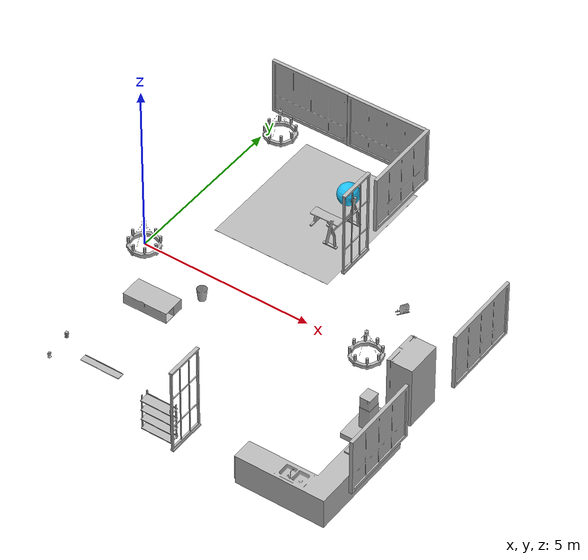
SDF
<sdf version="1.7">
 <world name="default">
  <model name="Ball_01_001">
   <static>1</static>
   <frame name="aws_robomaker_residential_Ball_01::__model__" attached_to="aws_robomaker_residential_Ball_01::link">
    <pose relative_to="__model__">0 0 0 0 -0 0</pose>
   </frame>
   <link name="aws_robomaker_residential_Ball_01::link">
    <inertial>
     <mass>0.12</mass>
     <inertia>
      <ixx>0.030752</ixx>
      <ixy>0</ixy>
      <ixz>0</ixz>
      <iyy>0.030752</iyy>
      <iyz>0</iyz>
      <izz>0.030752</izz>
     </inertia>
    </inertial>
    <collision name="collision">
     <geometry><sphere><radius>0.31</radius></sphere></geometry>
     <surface>
      <friction><ode><mu>0.85</mu><mu2>0.85</mu2></ode></friction>
      <contact><ode><kd>8500</kd><max_vel>5.1</max_vel></ode></contact>
     </surface>
    </collision>
    <visual name="visual">
     <geometry><sphere><radius>0.31</radius></sphere></geometry>
     <material><diffuse>0.12 0.76 0.97 1</diffuse><ambient>0.03 0.21 0.27 1</ambient></material>
     <meta><layer>1</layer></meta>
    </visual>
    <pose relative_to="aws_robomaker_residential_Ball_01::__model__">0 0 0 0 -0 0</pose>
   </link>
   <pose>3.2955 4.22567 0.318684 0 -0 0</pose>
  </model>
  <model name="Board_01_001">
   <static>1</static>
   <frame name="aws_robomaker_residential_Board_01::__model__" attached_to="aws_robomaker_residential_Board_01::link">
    <pose relative_to="__model__">0 0 0 0 -0 0</pose>
   </frame>
   <link name="aws_robomaker_residential_Board_01::link">
    <inertial><mass>1</mass></inertial>
    <collision name="collision">
     <geometry>
      <mesh>
       <uri>model://aws_robomaker_residential_Board_01/meshes/aws_Board_01_collision.DAE</uri>
       <scale>1 1 1</scale>
      </mesh>
     </geometry>
    </collision>
    <visual name="visual">
     <geometry>
      <mesh><uri>model://aws_robomaker_residential_Board_01/meshes/aws_Board_01_visual.DAE</uri></mesh>
     </geometry>
     <meta><layer>2</layer></meta>
    </visual>
    <pose relative_to="aws_robomaker_residential_Board_01::__model__">0 0 0 0 -0 0</pose>
   </link>
   <static>1</static>
   <pose>2.77907 -5.3927 1.53817 0 -0 0</pose>
  </model>
  <model name="Chandelier_01_001">
   <static>1</static>
   <frame name="aws_robomaker_residential_Chandelier_01::__model__" attached_to="aws_robomaker_residential_Chandelier_01::link">
    <pose relative_to="__model__">0 0 0 0 -0 0</pose>
   </frame>
   <link name="aws_robomaker_residential_Chandelier_01::link">
    <inertial><mass>1</mass></inertial>
    <collision name="collision">
     <geometry>
      <mesh>
       <uri>model://aws_robomaker_residential_Chandelier_01/meshes/aws_Chandelier_01_collision.DAE</uri>
       <scale>1 1 1</scale>
      </mesh>
     </geometry>
    </collision>
    <visual name="visual">
     <geometry>
      <mesh><uri>model://aws_robomaker_residential_Chandelier_01/meshes/aws_Chandelier_01_visual.DAE</uri></mesh>
     </geometry>
     <meta><layer>2</layer></meta>
    </visual>
    <pose relative_to="aws_robomaker_residential_Chandelier_01::__model__">0 0 0 0 -0 0</pose>
   </link>
   <static>1</static>
   <pose>1.22106 4.15574 1.295 0 -0 0</pose>
  </model>
  <model name="Chandelier_01_003">
   <static>1</static>
   <frame name="aws_robomaker_residential_Chandelier_01::__model__" attached_to="aws_robomaker_residential_Chandelier_01::link">
    <pose relative_to="__model__">0 0 0 0 -0 0</pose>
   </frame>
   <link name="aws_robomaker_residential_Chandelier_01::link">
    <inertial><mass>1</mass></inertial>
    <collision name="collision">
     <geometry>
      <mesh>
       <uri>model://aws_robomaker_residential_Chandelier_01/meshes/aws_Chandelier_01_collision.DAE</uri>
       <scale>1 1 1</scale>
      </mesh>
     </geometry>
    </collision>
    <visual name="visual">
     <geometry>
      <mesh><uri>model://aws_robomaker_residential_Chandelier_01/meshes/aws_Chandelier_01_visual.DAE</uri></mesh>
     </geometry>
     <meta><layer>2</layer></meta>
    </visual>
    <pose relative_to="aws_robomaker_residential_Chandelier_01::__model__">0 0 0 0 -0 0</pose>
   </link>
   <static>1</static>
   <pose>7.82406 -1.59 1.751 0 -0 0</pose>
  </model>
  <model name="Chandelier_01_004">
   <static>1</static>
   <frame name="aws_robomaker_residential_Chandelier_01::__model__" attached_to="aws_robomaker_residential_Chandelier_01::link">
    <pose relative_to="__model__">0 0 0 0 -0 0</pose>
   </frame>
   <link name="aws_robomaker_residential_Chandelier_01::link">
    <inertial><mass>1</mass></inertial>
    <collision name="collision">
     <geometry>
      <mesh>
       <uri>model://aws_robomaker_residential_Chandelier_01/meshes/aws_Chandelier_01_collision.DAE</uri>
       <scale>1 1 1</scale>
      </mesh>
     </geometry>
    </collision>
    <visual name="visual">
     <geometry>
      <mesh><uri>model://aws_robomaker_residential_Chandelier_01/meshes/aws_Chandelier_01_visual.DAE</uri></mesh>
     </geometry>
     <meta><layer>2</layer></meta>
    </visual>
    <pose relative_to="aws_robomaker_residential_Chandelier_01::__model__">0 0 0 0 -0 0</pose>
   </link>
   <static>1</static>
   <pose>1.22106 -1.59204 1.7873 0 -0 0</pose>
  </model>
  <model name="Carpet_01_002">
   <static>1</static>
   <frame name="aws_robomaker_residential_Carpet_01::__model__" attached_to="aws_robomaker_residential_Carpet_01::link">
    <pose relative_to="__model__">0 0 0 0 -0 0</pose>
   </frame>
   <link name="aws_robomaker_residential_Carpet_01::link">
    <inertial><mass>8.1</mass></inertial>
    <collision name="collision">
     <geometry>
      <mesh>
       <uri>model://aws_robomaker_residential_Carpet_01/meshes/aws_Carpet_01_collision.DAE</uri>
       <scale>1 1 0.95</scale>
      </mesh>
     </geometry>
     <surface><friction><ode><mu>100</mu><mu2>50</mu2></ode></friction></surface>
     <pose>0 0 -0.01 0 -0 0</pose>
    </collision>
    <visual name="visual">
     <geometry>
      <mesh><uri>model://aws_robomaker_residential_Carpet_01/meshes/aws_Carpet_01_visual.DAE</uri></mesh>
     </geometry>
     <meta><layer>1</layer></meta>
    </visual>
    <pose relative_to="aws_robomaker_residential_Carpet_01::__model__">0 0 0 0 -0 0</pose>
   </link>
   <static>1</static>
   <pose>2.85405 3.45 0.000585 0 -0 0</pose>
  </model>
  <model name="SecurityCamera_01_001">
   <static>1</static>
   <frame name="aws_robomaker_residential_SecurityCamera_01::__model__" attached_to="aws_robomaker_residential_SecurityCamera_01::link">
    <pose relative_to="__model__">0 0 0 0 -0 0</pose>
   </frame>
   <link name="aws_robomaker_residential_SecurityCamera_01::link">
    <inertial>
     <mass>1</mass>
     <inertia>
      <ixx>18.2222</ixx>
      <ixy>0</ixy>
      <ixz>0</ixz>
      <iyy>18.2222</iyy>
      <iyz>0</iyz>
      <izz>0.0018767</izz>
     </inertia>
    </inertial>
    <collision name="collision">
     <geometry>
      <mesh>
       <uri>model://aws_robomaker_residential_SecurityCamera_01/meshes/aws_SecurityCamera_01_collision.DAE</uri>
       <scale>1 1 1</scale>
      </mesh>
     </geometry>
    </collision>
    <visual name="visual">
     <geometry>
      <mesh>
       <uri>model://aws_robomaker_residential_SecurityCamera_01/meshes/aws_SecurityCamera_01_visual.DAE</uri>
      </mesh>
     </geometry>
     <meta><layer>2</layer></meta>
    </visual>
    <pose relative_to="aws_robomaker_residential_SecurityCamera_01::__model__">0 0 0 0 -0 0</pose>
   </link>
   <pose>0.842134 -4.99629 0.495067 0 0 -2.84104</pose>
  </model>
  <model name="CoffeeTable_01_001">
   <static>1</static>
   <frame name="aws_robomaker_residential_CoffeeTable_01::__model__" attached_to="aws_robomaker_residential_CoffeeTable_01::link">
    <pose relative_to="__model__">0 0 0 0 -0 0</pose>
   </frame>
   <link name="aws_robomaker_residential_CoffeeTable_01::link">
    <inertial>
     <mass>21.7</mass>
     <inertia><ixx>0.81375</ixx><ixy>0</ixy><ixz>0</ixz><iyy>2.76675</iyy><iyz>0</iyz><izz>3.254</izz></inertia>
    </inertial>
    <collision name="collision">
     <geometry>
      <mesh>
       <uri>model://aws_robomaker_residential_CoffeeTable_01/meshes/aws_CoffeeTable_01_collision.DAE</uri>
       <scale>1 1 1</scale>
      </mesh>
     </geometry>
     <surface><contact><ode><max_vel>0.01</max_vel></ode></contact></surface>
    </collision>
    <visual name="visual">
     <geometry>
      <mesh><uri>model://aws_robomaker_residential_CoffeeTable_01/meshes/aws_CoffeeTable_01_visual.DAE</uri></mesh>
     </geometry>
     <meta><layer>1</layer></meta>
    </visual>
    <pose relative_to="aws_robomaker_residential_CoffeeTable_01::__model__">0 0 0 0 -0 0</pose>
   </link>
   <static>1</static>
   <pose>1.5123 -1.73344 0.041983 0 -0 0.01</pose>
  </model>
  <model name="CookingBench_01_001">
   <frame name="aws_robomaker_residential_CookingBench_01::__model__" attached_to="aws_robomaker_residential_CookingBench_01::link">
    <pose relative_to="__model__">0 0 0 0 -0 0</pose>
   </frame>
   <link name="aws_robomaker_residential_CookingBench_01::link">
    <inertial><mass>1</mass></inertial>
    <collision name="collision">
     <geometry>
      <mesh>
       <uri>model://aws_robomaker_residential_CookingBench_01/meshes/aws_CookingBench_01_collision.DAE</uri>
       <scale>1 1 1</scale>
      </mesh>
     </geometry>
    </collision>
    <visual name="visual">
     <geometry>
      <mesh>
       <uri>model://aws_robomaker_residential_CookingBench_01/meshes/aws_CookingBench_01_visual.DAE</uri>
      </mesh>
     </geometry>
     <meta><layer>1</layer></meta>
    </visual>
    <pose relative_to="aws_robomaker_residential_CookingBench_01::__model__">0 0 0 0 -0 0</pose>
   </link>
   <pose>9.03838 -3.35114 0.90361 0 -0 3.13713</pose>
   <static>1</static>
  </model>
  <model name="FitnessEquipment_01_001">
   <static>1</static>
   <frame name="aws_robomaker_residential_FitnessEquipment_01::__model__" attached_to="aws_robomaker_residential_FitnessEquipment_01::link">
    <pose relative_to="__model__">0 0 0 0 -0 0</pose>
   </frame>
   <link name="aws_robomaker_residential_FitnessEquipment_01::link">
    <inertial><mass>80</mass></inertial>
    <collision name="collision">
     <geometry>
      <mesh>
       <uri>model://aws_robomaker_residential_FitnessEquipment_01/meshes/aws_FitnessEquipment_01_collision.DAE</uri>
       <scale>1 1 1</scale>
      </mesh>
     </geometry>
    </collision>
    <visual name="visual">
     <geometry>
      <mesh>
       <uri>model://aws_robomaker_residential_FitnessEquipment_01/meshes/aws_FitnessEquipment_01_visual.DAE</uri>
      </mesh>
     </geometry>
     <meta><layer>1</layer></meta>
    </visual>
    <pose relative_to="aws_robomaker_residential_FitnessEquipment_01::__model__">0 0 0 0 -0 0</pose>
   </link>
   <static>1</static>
   <pose>3.48472 3.1691 0.003168 0 -0 0</pose>
  </model>
  <model name="FoldingDoor_02_001">
   <static>1</static>
   <frame name="aws_robomaker_residential_FoldingDoor_02::__model__" attached_to="aws_robomaker_residential_FoldingDoor_02::link">
    <pose relative_to="__model__">0 0 0 0 -0 0</pose>
   </frame>
   <link name="aws_robomaker_residential_FoldingDoor_02::link">
    <inertial><mass>1</mass></inertial>
    <collision name="collision">
     <geometry>
      <mesh>
       <uri>model://aws_robomaker_residential_FoldingDoor_02/meshes/aws_FoldingDoor_02_collision.DAE</uri>
       <scale>1 1 1</scale>
      </mesh>
     </geometry>
    </collision>
    <visual name="visual">
     <geometry>
      <mesh><uri>model://aws_robomaker_residential_FoldingDoor_02/meshes/aws_FoldingDoor_02_visual.DAE</uri></mesh>
     </geometry>
     <meta><layer>2</layer></meta>
    </visual>
    <pose relative_to="aws_robomaker_residential_FoldingDoor_02::__model__">0 0 0 0 -0 0</pose>
   </link>
   <static>1</static>
   <pose>4.67423 2.46451 0 0 -0 3.14159</pose>
  </model>
  <model name="FoldingDoor_02_002">
   <static>1</static>
   <frame name="aws_robomaker_residential_FoldingDoor_02::__model__" attached_to="aws_robomaker_residential_FoldingDoor_02::link">
    <pose relative_to="__model__">0 0 0 0 -0 0</pose>
   </frame>
   <link name="aws_robomaker_residential_FoldingDoor_02::link">
    <inertial><mass>1</mass></inertial>
    <collision name="collision">
     <geometry>
      <mesh>
       <uri>model://aws_robomaker_residential_FoldingDoor_02/meshes/aws_FoldingDoor_02_collision.DAE</uri>
       <scale>1 1 1</scale>
      </mesh>
     </geometry>
    </collision>
    <visual name="visual">
     <geometry>
      <mesh><uri>model://aws_robomaker_residential_FoldingDoor_02/meshes/aws_FoldingDoor_02_visual.DAE</uri></mesh>
     </geometry>
     <meta><layer>2</layer></meta>
    </visual>
    <pose relative_to="aws_robomaker_residential_FoldingDoor_02::__model__">0 0 0 0 -0 0</pose>
   </link>
   <static>1</static>
   <pose>4.8912 -4.84968 0 0 -0 0</pose>
  </model>
  <model name="KitchenCabinet_01_001">
   <static>1</static>
   <frame name="aws_robomaker_residential_KitchenCabinet_01::__model__" attached_to="aws_robomaker_residential_KitchenCabinet_01::link">
    <pose relative_to="__model__">0 0 0 0 -0 0</pose>
   </frame>
   <link name="aws_robomaker_residential_KitchenCabinet_01::link">
    <inertial><mass>1</mass></inertial>
    <collision name="collision">
     <geometry>
      <mesh>
       <uri>model://aws_robomaker_residential_KitchenCabinet_01/meshes/aws_KitchenCabinet_01_collision.DAE</uri>
       <scale>1 1 1</scale>
      </mesh>
     </geometry>
    </collision>
    <visual name="visual">
     <geometry>
      <mesh>
       <uri>model://aws_robomaker_residential_KitchenCabinet_01/meshes/aws_KitchenCabinet_01_visual.DAE</uri>
      </mesh>
     </geometry>
     <meta><layer>1</layer></meta>
    </visual>
    <pose relative_to="aws_robomaker_residential_KitchenCabinet_01::__model__">0 0 0 0 -0 0</pose>
   </link>
   <static>1</static>
   <pose>8.00201 -3.83651 0.012068 0 0 -3.14</pose>
  </model>
  <model name="LightC_01_001">
   <static>1</static>
   <frame name="aws_robomaker_residential_LightC_01::__model__" attached_to="aws_robomaker_residential_LightC_01::link">
    <pose relative_to="__model__">0 0 0 0 -0 0</pose>
   </frame>
   <link name="aws_robomaker_residential_LightC_01::link">
    <inertial><mass>1</mass></inertial>
    <collision name="collision">
     <geometry>
      <mesh>
       <uri>model://aws_robomaker_residential_LightC_01/meshes/aws_LightC_01_collision.DAE</uri>
       <scale>1 1 1</scale>
      </mesh>
     </geometry>
    </collision>
    <visual name="visual">
     <geometry>
      <mesh><uri>model://aws_robomaker_residential_LightC_01/meshes/aws_LightC_01_visual.DAE</uri></mesh>
     </geometry>
     <meta><layer>2</layer></meta>
    </visual>
    <pose relative_to="aws_robomaker_residential_LightC_01::__model__">0 0 0 0 -0 0</pose>
   </link>
   <static>1</static>
   <pose>1.76957 -5.44437 2 0 -0 0</pose>
  </model>
  <model name="Rangehood_01_001">
   <static>1</static>
   <frame name="aws_robomaker_residential_Rangehood_01::__model__" attached_to="aws_robomaker_residential_Rangehood_01::link">
    <pose relative_to="__model__">0 0 0 0 -0 0</pose>
   </frame>
   <link name="aws_robomaker_residential_Rangehood_01::link">
    <inertial><mass>1</mass></inertial>
    <collision name="collision">
     <geometry>
      <mesh>
       <uri>model://aws_robomaker_residential_Rangehood_01/meshes/aws_Rangehood_01_collision.DAE</uri>
       <scale>1 1 1</scale>
      </mesh>
     </geometry>
    </collision>
    <visual name="visual">
     <geometry>
      <mesh><uri>model://aws_robomaker_residential_Rangehood_01/meshes/aws_Rangehood_01_visual.DAE</uri></mesh>
     </geometry>
     <meta><layer>2</layer></meta>
    </visual>
    <pose relative_to="aws_robomaker_residential_Rangehood_01::__model__">0 0 0 0 -0 0</pose>
   </link>
   <static>1</static>
   <pose>9.01979 -3.36994 1.50761 0 -0 0</pose>
  </model>
  <model name="Refrigerator_01_001">
   <static>1</static>
   <frame name="aws_robomaker_residential_Refrigerator_01::__model__" attached_to="aws_robomaker_residential_Refrigerator_01::link">
    <pose relative_to="__model__">0 0 0 0 -0 0</pose>
   </frame>
   <link name="aws_robomaker_residential_Refrigerator_01::link">
    <inertial><mass>1</mass></inertial>
    <collision name="collision">
     <geometry>
      <mesh>
       <uri>model://aws_robomaker_residential_Refrigerator_01/meshes/aws_Refrigerator_01_collision.DAE</uri>
       <scale>1 1 1</scale>
      </mesh>
     </geometry>
    </collision>
    <visual name="visual">
     <geometry>
      <mesh>
       <uri>model://aws_robomaker_residential_Refrigerator_01/meshes/aws_Refrigerator_01_visual.DAE</uri>
      </mesh>
     </geometry>
     <meta><layer>1</layer></meta>
    </visual>
    <pose relative_to="aws_robomaker_residential_Refrigerator_01::__model__">0 0 0 0 -0 0</pose>
   </link>
   <static>1</static>
   <pose>8.70273 -1.03203 0 0 0 -1.5635</pose>
  </model>
  <model name="ShoeRack_01_001">
   <static>1</static>
   <frame name="aws_robomaker_residential_ShoeRack_01::__model__" attached_to="aws_robomaker_residential_ShoeRack_01::link">
    <pose relative_to="__model__">0 0 0 0 -0 0</pose>
   </frame>
   <link name="aws_robomaker_residential_ShoeRack_01::link">
    <inertial>
     <mass>6</mass>
     <inertia>
      <ixx>0.02</ixx>
      <ixy>0</ixy>
      <ixz>0</ixz>
      <iyy>0.04</iyy>
      <iyz>0</iyz>
      <ixx>0.02</ixx>
      <izz>1</izz>
     </inertia>
    </inertial>
    <collision name="collision">
     <geometry>
      <mesh>
       <uri>model://aws_robomaker_residential_ShoeRack_01/meshes/aws_ShoeRack_01_collision.DAE</uri>
       <scale>1 1 1</scale>
      </mesh>
     </geometry>
     <surface>
      <friction><ode><mu>0.2</mu><mu2>0.2</mu2></ode></friction>
      <contact><ode><kd>2500</kd></ode></contact>
     </surface>
    </collision>
    <visual name="visual">
     <geometry>
      <mesh><uri>model://aws_robomaker_residential_ShoeRack_01/meshes/aws_ShoeRack_01_visual.DAE</uri></mesh>
     </geometry>
     <meta><layer>1</layer></meta>
    </visual>
    <pose relative_to="aws_robomaker_residential_ShoeRack_01::__model__">0 0 0 0 -0 0</pose>
   </link>
   <pose>4.29798 -5.17357 0 0 -0 0</pose>
  </model>
  <model name="Tableware_01_001">
   <static>1</static>
   <frame name="aws_robomaker_residential_Tableware_01::__model__" attached_to="aws_robomaker_residential_Tableware_01::link">
    <pose relative_to="__model__">0 0 0 0 -0 0</pose>
   </frame>
   <link name="aws_robomaker_residential_Tableware_01::link">
    <inertial><mass>1</mass></inertial>
    <collision name="collision">
     <geometry>
      <mesh>
       <uri>model://aws_robomaker_residential_Tableware_01/meshes/aws_Tableware_01_collision.DAE</uri>
       <scale>1 1 1</scale>
      </mesh>
     </geometry>
    </collision>
    <visual name="visual">
     <geometry>
      <mesh><uri>model://aws_robomaker_residential_Tableware_01/meshes/aws_Tableware_01_visual.DAE</uri></mesh>
     </geometry>
     <meta><layer>1</layer></meta>
    </visual>
    <pose relative_to="aws_robomaker_residential_Tableware_01::__model__">0 0 0 0 -0 0</pose>
   </link>
   <pose>7.15317 0.982767 0.817812 -0.001238 -0.000976 1.02476</pose>
  </model>
  <model name="Trash_01_001">
   <static>1</static>
   <frame name="aws_robomaker_residential_Trash_01::__model__" attached_to="aws_robomaker_residential_Trash_01::link">
    <pose relative_to="__model__">0 0 0 0 -0 0</pose>
   </frame>
   <link name="aws_robomaker_residential_Trash_01::link">
    <inertial>
     <mass>0.1</mass>
     <inertia><ixy>0</ixy><ixz>0</ixz><iyz>0</iyz><ixx>0.05288</ixx><iyy>0.05288</iyy><izz>0.09132</izz></inertia>
    </inertial>
    <collision name="collision">
     <geometry>
      <mesh>
       <uri>model://aws_robomaker_residential_Trash_01/meshes/aws_Trash_01_collision.DAE</uri>
       <scale>1 1 1</scale>
      </mesh>
     </geometry>
    </collision>
    <visual name="visual">
     <geometry>
      <mesh><uri>model://aws_robomaker_residential_Trash_01/meshes/aws_Trash_01_visual.DAE</uri></mesh>
     </geometry>
     <meta><layer>1</layer></meta>
    </visual>
    <pose relative_to="aws_robomaker_residential_Trash_01::__model__">0 0 0 0 -0 0</pose>
   </link>
   <pose>2.36015 -0.796238 0.011 0 -0 0</pose>
  </model>
  <model name="RoomWindow_01_003">
   <static>1</static>
   <frame name="aws_robomaker_residential_RoomWindow_01::__model__" attached_to="aws_robomaker_residential_RoomWindow_01::link">
    <pose relative_to="__model__">0 0 0 0 -0 0</pose>
   </frame>
   <link name="aws_robomaker_residential_RoomWindow_01::link">
    <inertial><mass>1</mass></inertial>
    <collision name="collision">
     <geometry>
      <mesh>
       <uri>model://aws_robomaker_residential_RoomWindow_01/meshes/aws_RoomWindow_01_collision.DAE</uri>
       <scale>1 1 1</scale>
      </mesh>
     </geometry>
    </collision>
    <visual name="visual">
     <geometry>
      <mesh><uri>model://aws_robomaker_residential_RoomWindow_01/meshes/aws_RoomWindow_01_visual.DAE</uri></mesh>
     </geometry>
     <meta><layer>2</layer></meta>
    </visual>
    <pose relative_to="aws_robomaker_residential_RoomWindow_01::__model__">0 0 0 0 -0 0</pose>
   </link>
   <static>1</static>
   <pose>9.42262 -3.37398 0.502739 0 0 -3.1361</pose>
  </model>
  <model name="RoomWindow_01_004">
   <static>1</static>
   <frame name="aws_robomaker_residential_RoomWindow_01::__model__" attached_to="aws_robomaker_residential_RoomWindow_01::link">
    <pose relative_to="__model__">0 0 0 0 -0 0</pose>
   </frame>
   <link name="aws_robomaker_residential_RoomWindow_01::link">
    <inertial><mass>1</mass></inertial>
    <collision name="collision">
     <geometry>
      <mesh>
       <uri>model://aws_robomaker_residential_RoomWindow_01/meshes/aws_RoomWindow_01_collision.DAE</uri>
       <scale>1 1 1</scale>
      </mesh>
     </geometry>
    </collision>
    <visual name="visual">
     <geometry>
      <mesh><uri>model://aws_robomaker_residential_RoomWindow_01/meshes/aws_RoomWindow_01_visual.DAE</uri></mesh>
     </geometry>
     <meta><layer>2</layer></meta>
    </visual>
    <pose relative_to="aws_robomaker_residential_RoomWindow_01::__model__">0 0 0 0 -0 0</pose>
   </link>
   <static>1</static>
   <pose>9.42256 0.96852 0.496581 0 0 -3.1361</pose>
  </model>
  <model name="RoomWindow_01_005">
   <static>1</static>
   <frame name="aws_robomaker_residential_RoomWindow_01::__model__" attached_to="aws_robomaker_residential_RoomWindow_01::link">
    <pose relative_to="__model__">0 0 0 0 -0 0</pose>
   </frame>
   <link name="aws_robomaker_residential_RoomWindow_01::link">
    <inertial><mass>1</mass></inertial>
    <collision name="collision">
     <geometry>
      <mesh>
       <uri>model://aws_robomaker_residential_RoomWindow_01/meshes/aws_RoomWindow_01_collision.DAE</uri>
       <scale>1 1 1</scale>
      </mesh>
     </geometry>
    </collision>
    <visual name="visual">
     <geometry>
      <mesh><uri>model://aws_robomaker_residential_RoomWindow_01/meshes/aws_RoomWindow_01_visual.DAE</uri></mesh>
     </geometry>
     <meta><layer>2</layer></meta>
    </visual>
    <pose relative_to="aws_robomaker_residential_RoomWindow_01::__model__">0 0 0 0 -0 0</pose>
   </link>
   <static>1</static>
   <pose>4.72232 4.47028 0.502739 0 0 -3.1361</pose>
  </model>
  <model name="RoomWindow_01_006">
   <static>1</static>
   <frame name="aws_robomaker_residential_RoomWindow_01::__model__" attached_to="aws_robomaker_residential_RoomWindow_01::link">
    <pose relative_to="__model__">0 0 0 0 -0 0</pose>
   </frame>
   <link name="aws_robomaker_residential_RoomWindow_01::link">
    <inertial><mass>1</mass></inertial>
    <collision name="collision">
     <geometry>
      <mesh>
       <uri>model://aws_robomaker_residential_RoomWindow_01/meshes/aws_RoomWindow_01_collision.DAE</uri>
       <scale>1 1 1</scale>
      </mesh>
     </geometry>
    </collision>
    <visual name="visual">
     <geometry>
      <mesh><uri>model://aws_robomaker_residential_RoomWindow_01/meshes/aws_RoomWindow_01_visual.DAE</uri></mesh>
     </geometry>
     <meta><layer>2</layer></meta>
    </visual>
    <pose relative_to="aws_robomaker_residential_RoomWindow_01::__model__">0 0 0 0 -0 0</pose>
   </link>
   <static>1</static>
   <pose>3.48852 5.60069 0.502739 0 0 -1.56627</pose>
  </model>
  <model name="RoomWindow_01_007">
   <static>1</static>
   <frame name="aws_robomaker_residential_RoomWindow_01::__model__" attached_to="aws_robomaker_residential_RoomWindow_01::link">
    <pose relative_to="__model__">0 0 0 0 -0 0</pose>
   </frame>
   <link name="aws_robomaker_residential_RoomWindow_01::link">
    <inertial><mass>1</mass></inertial>
    <collision name="collision">
     <geometry>
      <mesh>
       <uri>model://aws_robomaker_residential_RoomWindow_01/meshes/aws_RoomWindow_01_collision.DAE</uri>
       <scale>1 1 1</scale>
      </mesh>
     </geometry>
    </collision>
    <visual name="visual">
     <geometry>
      <mesh><uri>model://aws_robomaker_residential_RoomWindow_01/meshes/aws_RoomWindow_01_visual.DAE</uri></mesh>
     </geometry>
     <meta><layer>2</layer></meta>
    </visual>
    <pose relative_to="aws_robomaker_residential_RoomWindow_01::__model__">0 0 0 0 -0 0</pose>
   </link>
   <static>1</static>
   <pose>1.14095 5.60069 0.502739 0 0 -1.56627</pose>
  </model>
 </world>
</sdf>
